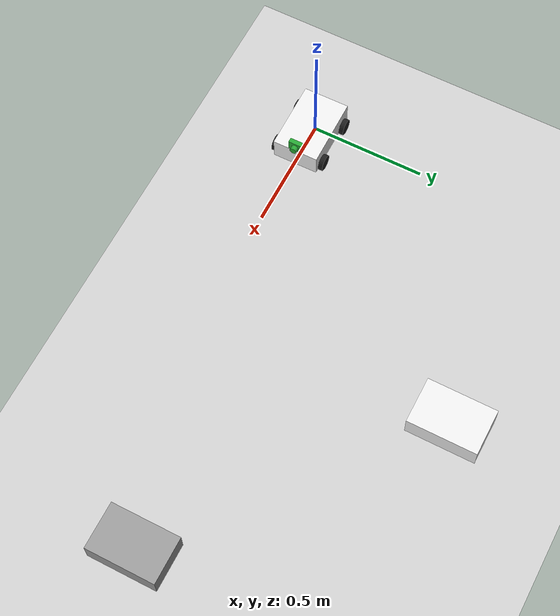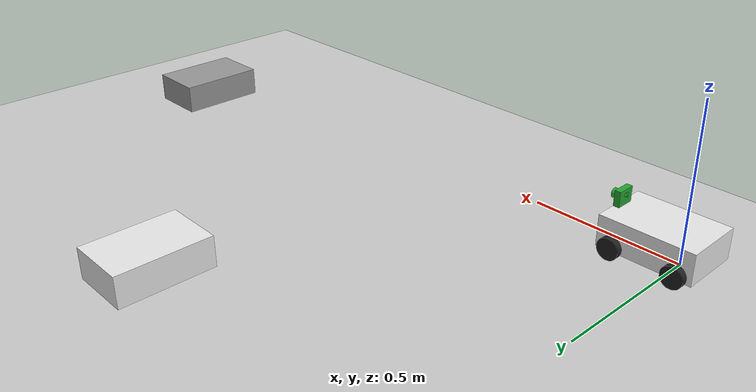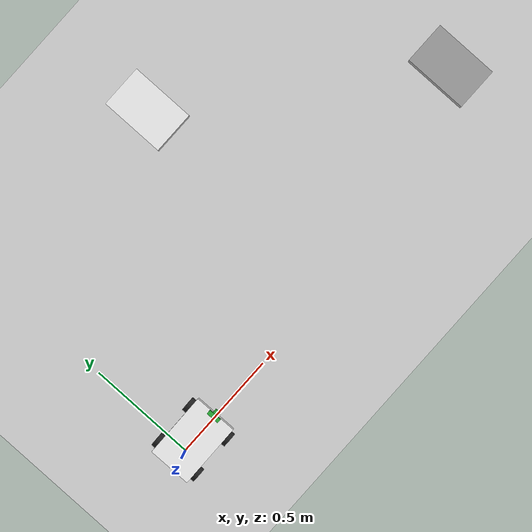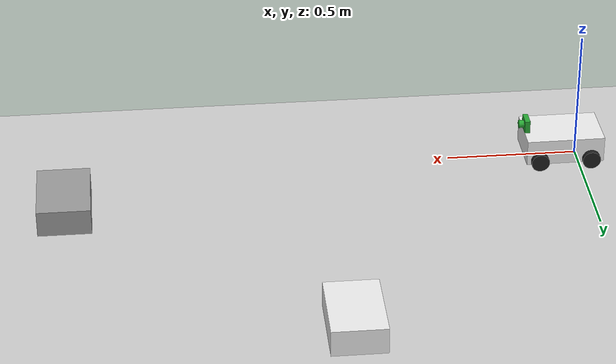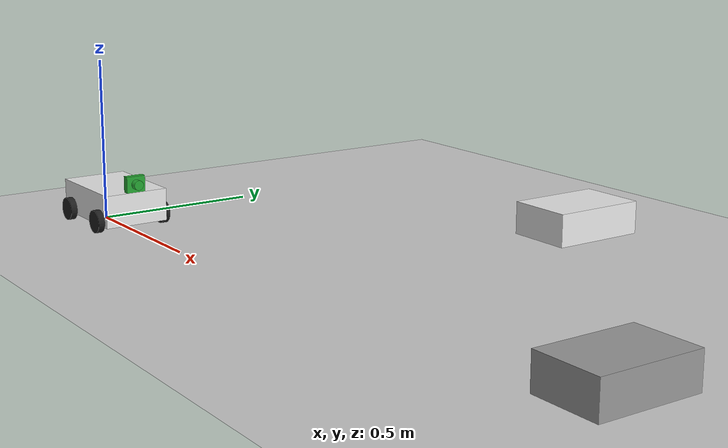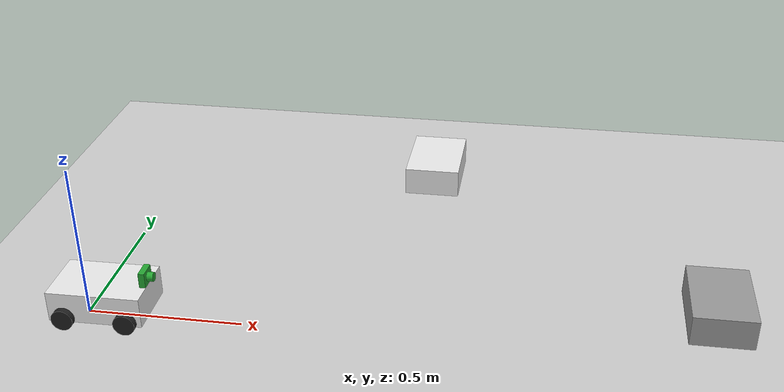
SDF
<sdf version="1.7">
 <world name="default">
  <light name="sun" type="directional">
   <pose>0 0 10 0 -0 0</pose>
   <diffuse>0.8 0.8 0.8 1</diffuse>
   <specular>0.2 0.2 0.2 1</specular>
   <attenuation>
    <range>1000</range>
    <constant>0.9</constant>
    <linear>0.01</linear>
    <quadratic>0.001</quadratic>
   </attenuation>
   <direction>-0.5 0.1 -0.9</direction>
   <spot><inner_angle>0</inner_angle><outer_angle>0</outer_angle><falloff>0</falloff></spot>
  </light>
  <model name="ground_plane">
   <static>1</static>
   <link name="link">
    <collision name="collision">
     <geometry><plane><normal>0 0 1</normal><size>100 100</size></plane></geometry>
     <surface>
      <contact><collide_bitmask>65535</collide_bitmask></contact>
      <friction><ode><mu>100</mu><mu2>50</mu2></ode></friction>
     </surface>
    </collision>
    <visual name="visual">
     <cast_shadows>0</cast_shadows>
     <geometry><plane><normal>0 0 1</normal><size>100 100</size></plane></geometry>
     <material>
      <script><uri>file://media/materials/scripts/gazebo.material</uri><name>Gazebo/Grey</name></script>
     </material>
    </visual>
   </link>
  </model>
  <gravity>0 0 -9.8</gravity>
  <magnetic_field>6e-06 2.3e-05 -4.2e-05</magnetic_field>
  <atmosphere type="adiabatic"/>
  <physics type="ode">
   <max_step_size>0.001</max_step_size>
   <real_time_factor>1</real_time_factor>
   <real_time_update_rate>1000</real_time_update_rate>
  </physics>
  <scene><ambient>0.4 0.4 0.4 1</ambient><background>0.7 0.7 0.7 1</background><shadows>1</shadows></scene>
  <audio><device>default</device></audio>
  <spherical_coordinates>
   <surface_model>EARTH_WGS84</surface_model>
   <latitude_deg>0</latitude_deg>
   <longitude_deg>0</longitude_deg>
   <elevation>0</elevation>
   <heading_deg>0</heading_deg>
  </spherical_coordinates>
  <model name="my_bot">
   <link name="base_link">
    <inertial>
     <pose>-0.009091 0 0.081818 0 -0 0</pose>
     <mass>2.2</mass>
     <inertia>
      <ixx>0.0206487</ixx>
      <ixy>0</ixy>
      <ixz>-0.000636364</ixz>
      <iyy>0.00721091</iyy>
      <iyz>1.0842e-19</iyz>
      <izz>0.0155442</izz>
     </inertia>
    </inertial>
    <collision name="base_link_fixed_joint_lump__chassis_collision">
     <pose>0 0 0.085 0 -0 0</pose>
     <geometry><box><size>0.3 0.2 0.1</size></box></geometry>
    </collision>
    <collision name="base_link_fixed_joint_lump__left_back_wheel_collision_1">
     <pose>-0.1 0.11 0.05 -1.5708 0 0</pose>
     <geometry><cylinder><length>0.02</length><radius>0.035</radius></cylinder></geometry>
     <surface><friction><ode><mu>0.0001</mu><mu2>0.0001</mu2></ode></friction></surface>
    </collision>
    <collision name="base_link_fixed_joint_lump__right_back_wheel_collision_2">
     <pose>-0.1 -0.11 0.05 -1.5708 0 0</pose>
     <geometry><cylinder><length>0.02</length><radius>0.035</radius></cylinder></geometry>
     <surface><friction><ode><mu>0.0001</mu><mu2>0.0001</mu2></ode></friction></surface>
    </collision>
    <visual name="base_link_fixed_joint_lump__chassis_visual">
     <pose>0 0 0.085 0 -0 0</pose>
     <geometry><box><size>0.3 0.2 0.1</size></box></geometry>
     <material>
      <script><name>Gazebo/White</name><uri>file://media/materials/scripts/gazebo.material</uri></script>
     </material>
    </visual>
    <visual name="base_link_fixed_joint_lump__camera_visual_1">
     <pose>0.14 0 0.16 0 -0 0</pose>
     <geometry><box><size>0.02 0.06 0.05</size></box></geometry>
     <material>
      <script><name>Gazebo/Green</name><uri>file://media/materials/scripts/gazebo.material</uri></script>
     </material>
    </visual>
    <visual name="base_link_fixed_joint_lump__camera_visual_2">
     <pose>0.15 0 0.16 3.14159 -1.57079 3.14159</pose>
     <geometry><cylinder><length>0.04</length><radius>0.015</radius></cylinder></geometry>
     <material>
      <script><name>Gazebo/Green</name><uri>file://media/materials/scripts/gazebo.material</uri></script>
     </material>
    </visual>
    <visual name="base_link_fixed_joint_lump__left_back_wheel_visual_3">
     <pose>-0.1 0.11 0.05 -1.5708 0 0</pose>
     <geometry><cylinder><length>0.02</length><radius>0.035</radius></cylinder></geometry>
     <material>
      <script><name>Gazebo/Black</name><uri>file://media/materials/scripts/gazebo.material</uri></script>
     </material>
    </visual>
    <visual name="base_link_fixed_joint_lump__right_back_wheel_visual_4">
     <pose>-0.1 -0.11 0.05 -1.5708 0 0</pose>
     <geometry><cylinder><length>0.02</length><radius>0.035</radius></cylinder></geometry>
     <material>
      <script><name>Gazebo/Black</name><uri>file://media/materials/scripts/gazebo.material</uri></script>
     </material>
    </visual>
    <sensor name="camera" type="camera">
     <visualize>1</visualize>
     <update_rate>10</update_rate>
     <camera>
      <horizontal_fov>1.089</horizontal_fov>
      <image><format>R8G8B8</format><width>640</width><height>480</height></image>
      <clip><near>0.05</near><far>8</far></clip>
     </camera>
     <plugin name="camera_controller" filename="libgazebo_ros_camera.so">
      <frame_name>camera_optical</frame_name>
     </plugin>
     <pose>0.14 0 0.16 0 -0 0</pose>
    </sensor>
   </link>
   <joint name="left_front_wheel_joint" type="revolute">
    <pose relative_to="base_link">0.1 0.11 0.05 -1.5708 0 0</pose>
    <parent>base_link</parent>
    <child>left_front_wheel</child>
    <axis>
     <xyz>0 0 1</xyz>
     <limit><lower>-1e+16</lower><upper>1e+16</upper></limit>
     <dynamics><spring_reference>0</spring_reference><spring_stiffness>0</spring_stiffness></dynamics>
    </axis>
   </joint>
   <link name="left_front_wheel">
    <pose relative_to="left_front_wheel_joint">0 0 0 0 -0 0</pose>
    <inertial>
     <mass>0.1</mass>
     <inertia><ixx>0.000253</ixx><ixy>0</ixy><ixz>0</ixz><iyy>0.000253</iyy><iyz>0</iyz><izz>0.0005</izz></inertia>
    </inertial>
    <collision name="left_front_wheel_collision">
     <geometry><cylinder><length>0.02</length><radius>0.035</radius></cylinder></geometry>
    </collision>
    <visual name="left_front_wheel_visual">
     <geometry><cylinder><length>0.02</length><radius>0.035</radius></cylinder></geometry>
     <material>
      <script><name>Gazebo/Black</name><uri>file://media/materials/scripts/gazebo.material</uri></script>
     </material>
    </visual>
   </link>
   <joint name="right_front_wheel_joint" type="revolute">
    <pose relative_to="base_link">0.1 -0.11 0.05 -1.5708 0 0</pose>
    <parent>base_link</parent>
    <child>right_front_wheel</child>
    <axis>
     <xyz>0 0 1</xyz>
     <limit><lower>-1e+16</lower><upper>1e+16</upper></limit>
     <dynamics><spring_reference>0</spring_reference><spring_stiffness>0</spring_stiffness></dynamics>
    </axis>
   </joint>
   <link name="right_front_wheel">
    <pose relative_to="right_front_wheel_joint">0 0 0 0 -0 0</pose>
    <inertial>
     <mass>0.1</mass>
     <inertia><ixx>0.000253</ixx><ixy>0</ixy><ixz>0</ixz><iyy>0.000253</iyy><iyz>0</iyz><izz>0.0005</izz></inertia>
    </inertial>
    <collision name="right_front_wheel_collision">
     <geometry><cylinder><length>0.02</length><radius>0.035</radius></cylinder></geometry>
    </collision>
    <visual name="right_front_wheel_visual">
     <geometry><cylinder><length>0.02</length><radius>0.035</radius></cylinder></geometry>
     <material>
      <script><name>Gazebo/Black</name><uri>file://media/materials/scripts/gazebo.material</uri></script>
     </material>
    </visual>
   </link>
   <static>0</static>
   <plugin name="gazebo_ros2_control" filename="libgazebo_ros2_control.so">
    <parameters>/home/tand/second_ros2_ws/install/bearing_formation_control/share/bearing_formation_control/config/ros2_controller.yaml</parameters>
   </plugin>
   <pose>0.058953 0.007335 -0.015009 -0 -8.9e-05 0.009617</pose>
  </model>
  <model name="unit_box_clone">
   <link name="link">
    <inertial>
     <mass>1</mass>
     <inertia>
      <ixx>0.166667</ixx>
      <ixy>0</ixy>
      <ixz>0</ixz>
      <iyy>0.166667</iyy>
      <iyz>0</iyz>
      <izz>0.166667</izz>
     </inertia>
    </inertial>
    <visual name="visual">
     <geometry><box><size>0.2 0.3 0.1</size></box></geometry>
     <material>
      <script><name>Gazebo/White</name><uri>file://media/materials/scripts/gazebo.material</uri></script>
      <shader type="pixel"><normal_map>__default__</normal_map></shader>
      <ambient>1 1 1 1</ambient>
      <diffuse>0.7 0.7 0.7 1</diffuse>
      <specular>0.01 0.01 0.01 1</specular>
      <emissive>0 0 0 1</emissive>
     </material>
    </visual>
    <collision name="collision">
     <geometry><box><size>0.2 0.3 0.1</size></box></geometry>
     <surface>
      <friction>
       <ode><mu>1</mu><mu2>1</mu2><fdir1>0 0 0</fdir1><slip1>0</slip1><slip2>0</slip2></ode>
       <torsional>
        <coefficient>1</coefficient>
        <patch_radius>0</patch_radius>
        <surface_radius>0</surface_radius>
        <use_patch_radius>1</use_patch_radius>
        <ode><slip>0</slip></ode>
       </torsional>
      </friction>
      <bounce><restitution_coefficient>0</restitution_coefficient><threshold>1e+06</threshold></bounce>
      <contact>
       <collide_without_contact>0</collide_without_contact>
       <collide_without_contact_bitmask>1</collide_without_contact_bitmask>
       <collide_bitmask>1</collide_bitmask>
       <ode>
        <soft_cfm>0</soft_cfm>
        <soft_erp>0.2</soft_erp>
        <kp>1e+13</kp>
        <kd>1</kd>
        <max_vel>0.01</max_vel>
        <min_depth>0</min_depth>
       </ode>
       <bullet>
        <split_impulse>1</split_impulse>
        <split_impulse_penetration_threshold>-0.01</split_impulse_penetration_threshold>
        <soft_cfm>0</soft_cfm>
        <soft_erp>0.2</soft_erp>
        <kp>1e+13</kp>
        <kd>1</kd>
       </bullet>
      </contact>
     </surface>
    </collision>
   </link>
   <static>0</static>
   <pose>0.982463 1.09002 0.050001 -3e-06 -2e-06 1e-06</pose>
  </model>
  <model name="unit_box">
   <link name="link">
    <inertial>
     <mass>1</mass>
     <inertia>
      <ixx>0.166667</ixx>
      <ixy>0</ixy>
      <ixz>0</ixz>
      <iyy>0.166667</iyy>
      <iyz>0</iyz>
      <izz>0.166667</izz>
     </inertia>
    </inertial>
    <visual name="visual">
     <geometry><box><size>0.2 0.3 0.1</size></box></geometry>
     <material>
      <script><name>Gazebo/Grey</name><uri>file://media/materials/scripts/gazebo.material</uri></script>
      <shader type="pixel"><normal_map>__default__</normal_map></shader>
      <ambient>1 1 1 1</ambient>
      <diffuse>0.7 0.7 0.7 1</diffuse>
      <specular>0.01 0.01 0.01 1</specular>
      <emissive>0 0 0 1</emissive>
     </material>
    </visual>
    <collision name="collision">
     <geometry><box><size>0.2 0.3 0.1</size></box></geometry>
     <surface>
      <friction>
       <ode><mu>1</mu><mu2>1</mu2><fdir1>0 0 0</fdir1><slip1>0</slip1><slip2>0</slip2></ode>
       <torsional>
        <coefficient>1</coefficient>
        <patch_radius>0</patch_radius>
        <surface_radius>0</surface_radius>
        <use_patch_radius>1</use_patch_radius>
        <ode><slip>0</slip></ode>
       </torsional>
      </friction>
      <bounce><restitution_coefficient>0</restitution_coefficient><threshold>1e+06</threshold></bounce>
      <contact>
       <collide_without_contact>0</collide_without_contact>
       <collide_without_contact_bitmask>1</collide_without_contact_bitmask>
       <collide_bitmask>1</collide_bitmask>
       <ode>
        <soft_cfm>0</soft_cfm>
        <soft_erp>0.2</soft_erp>
        <kp>1e+13</kp>
        <kd>1</kd>
        <max_vel>0.01</max_vel>
        <min_depth>0</min_depth>
       </ode>
       <bullet>
        <split_impulse>1</split_impulse>
        <split_impulse_penetration_threshold>-0.01</split_impulse_penetration_threshold>
        <soft_cfm>0</soft_cfm>
        <soft_erp>0.2</soft_erp>
        <kp>1e+13</kp>
        <kd>1</kd>
       </bullet>
      </contact>
     </surface>
    </collision>
   </link>
   <static>0</static>
   <pose>1.98162 0.248432 0.050001 3e-06 -2e-06 0</pose>
  </model>
 </world>
</sdf>
